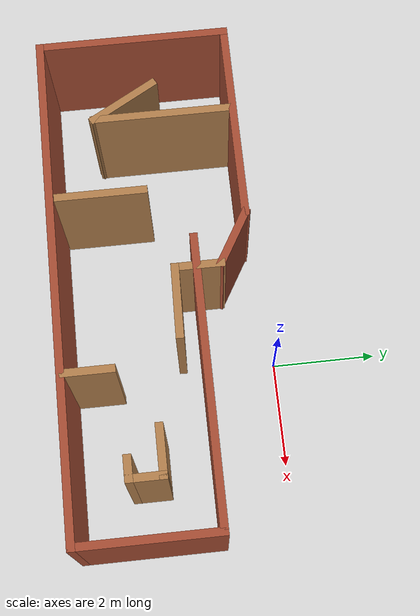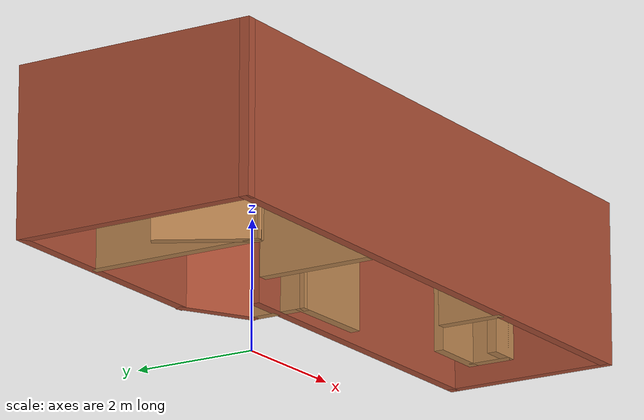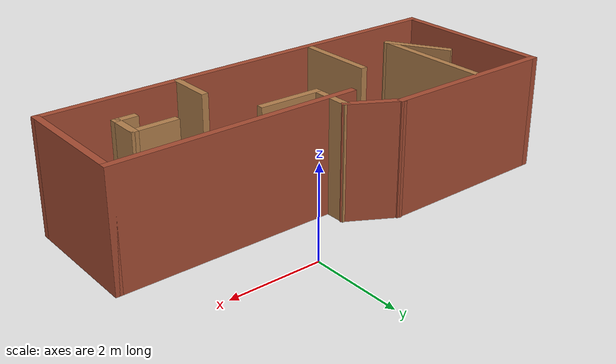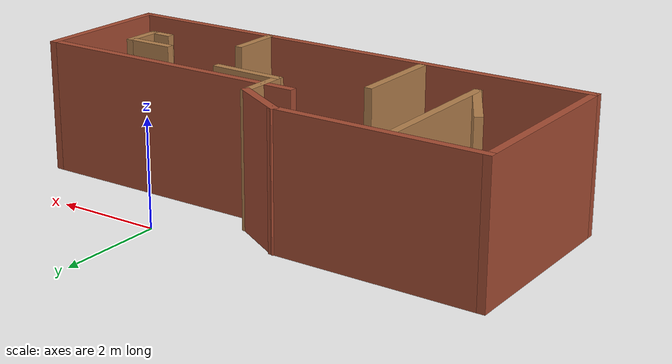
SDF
<?xml version='1.0'?>
<sdf version='1.6'>
  <model name='zlab_test'>
    <pose frame=''>-1.39 -2.14627 0 0 -0 0</pose>
    <link name='Wall_0'>
      <collision name='Wall_0_Collision'>
        <geometry>
          <box>
            <size>5.5 0.15 2.5</size>
          </box>
        </geometry>
        <pose frame=''>0 0 1.25 0 -0 0</pose>
      </collision>
      <visual name='Wall_0_Visual'>
        <pose frame=''>0 0 1.25 0 -0 0</pose>
        <geometry>
          <box>
            <size>5.5 0.15 2.5</size>
          </box>
        </geometry>
        <material>
          <script>
            <uri>file://media/materials/scripts/gazebo.material</uri>
            <name>Gazebo/Bricks</name>
          </script>
          <ambient>1 1 1 1</ambient>
        </material>
        <meta>
          <layer>0</layer>
        </meta>
      </visual>
      <pose frame=''>2.125 0.786274 0 0 -0 0</pose>
    </link>
    <link name='Wall_1'>
      <collision name='Wall_1_Collision'>
        <geometry>
          <box>
            <size>2.75 0.15 2.5</size>
          </box>
        </geometry>
        <pose frame=''>0 0 1.25 0 -0 0</pose>
      </collision>
      <visual name='Wall_1_Visual'>
        <pose frame=''>0 0 1.25 0 -0 0</pose>
        <geometry>
          <box>
            <size>2.75 0.15 2.5</size>
          </box>
        </geometry>
        <material>
          <script>
            <uri>file://media/materials/scripts/gazebo.material</uri>
            <name>Gazebo/Bricks</name>
          </script>
          <ambient>1 1 1 1</ambient>
        </material>
        <meta>
          <layer>0</layer>
        </meta>
      </visual>
      <pose frame=''>4.8 -0.513726 0 0 -0 -1.5708</pose>
    </link>
    <link name='Wall_10'>
      <collision name='Wall_10_Collision'>
        <geometry>
          <box>
            <size>1.75 0.15 2.5</size>
          </box>
        </geometry>
        <pose frame=''>0 0 1.25 0 -0 0</pose>
      </collision>
      <visual name='Wall_10_Visual'>
        <pose frame=''>0 0 1.25 0 -0 0</pose>
        <geometry>
          <box>
            <size>1.75 0.15 2.5</size>
          </box>
        </geometry>
        <material>
          <script>
            <uri>file://media/materials/scripts/gazebo.material</uri>
            <name>Gazebo/Wood</name>
          </script>
          <ambient>1 1 1 1</ambient>
        </material>
        <meta>
          <layer>0</layer>
        </meta>
      </visual>
      <pose frame=''>-1.59 -0.853726 0 0 -0 -1.5708</pose>
    </link>
    <link name='Wall_12'>
      <collision name='Wall_12_Collision'>
        <geometry>
          <box>
            <size>2.75 0.15 2.5</size>
          </box>
        </geometry>
        <pose frame=''>0 0 1.25 0 -0 0</pose>
      </collision>
      <visual name='Wall_12_Visual'>
        <pose frame=''>0 0 1.25 0 -0 0</pose>
        <geometry>
          <box>
            <size>2.75 0.15 2.5</size>
          </box>
        </geometry>
        <material>
          <script>
            <uri>file://media/materials/scripts/gazebo.material</uri>
            <name>Gazebo/Wood</name>
          </script>
          <ambient>1 1 1 1</ambient>
        </material>
        <meta>
          <layer>0</layer>
        </meta>
      </visual>
      <pose frame=''>-3.13 0.426274 0 0 -0 -1.5708</pose>
    </link>
    <link name='Wall_13'>
      <collision name='Wall_13_Collision'>
        <geometry>
          <box>
            <size>1.5 0.15 2.5</size>
          </box>
        </geometry>
        <pose frame=''>0 0 1.25 0 -0 0</pose>
      </collision>
      <visual name='Wall_13_Visual'>
        <pose frame=''>0 0 1.25 0 -0 0</pose>
        <geometry>
          <box>
            <size>1.5 0.15 2.5</size>
          </box>
        </geometry>
        <material>
          <script>
            <uri>file://media/materials/scripts/gazebo.material</uri>
            <name>Gazebo/Wood</name>
          </script>
          <ambient>1 1 1 1</ambient>
        </material>
        <meta>
          <layer>0</layer>
        </meta>
      </visual>
      <pose frame=''>-3.4675 -0.289159 0 0 -0 2.0944</pose>
    </link>
    <link name='Wall_16'>
      <collision name='Wall_16_Collision'>
        <geometry>
          <box>
            <size>1 0.15 2.5</size>
          </box>
        </geometry>
        <pose frame=''>0 0 1.25 0 -0 0</pose>
      </collision>
      <visual name='Wall_16_Visual'>
        <pose frame=''>0 0 1.25 0 -0 0</pose>
        <geometry>
          <box>
            <size>1 0.15 2.5</size>
          </box>
        </geometry>
        <material>
          <script>
            <uri>file://media/materials/scripts/gazebo.material</uri>
            <name>Gazebo/Wood</name>
          </script>
          <ambient>1 1 1 1</ambient>
        </material>
        <meta>
          <layer>0</layer>
        </meta>
      </visual>
      <pose frame=''>3.325 -0.153726 0 0 -0 0</pose>
    </link>
    <link name='Wall_17'>
      <collision name='Wall_17_Collision'>
        <geometry>
          <box>
            <size>0.75 0.15 2.5</size>
          </box>
        </geometry>
        <pose frame=''>0 0 1.25 0 -0 0</pose>
      </collision>
      <visual name='Wall_17_Visual'>
        <pose frame=''>0 0 1.25 0 -0 0</pose>
        <geometry>
          <box>
            <size>0.75 0.15 2.5</size>
          </box>
        </geometry>
        <material>
          <script>
            <uri>file://media/materials/scripts/gazebo.material</uri>
            <name>Gazebo/Wood</name>
          </script>
          <ambient>1 1 1 1</ambient>
        </material>
        <meta>
          <layer>0</layer>
        </meta>
      </visual>
      <pose frame=''>3.75 -0.453726 0 0 -0 -1.5708</pose>
    </link>
    <link name='Wall_18'>
      <collision name='Wall_18_Collision'>
        <geometry>
          <box>
            <size>0.5 0.15 2.5</size>
          </box>
        </geometry>
        <pose frame=''>0 0 1.25 0 -0 0</pose>
      </collision>
      <visual name='Wall_18_Visual'>
        <pose frame=''>0 0 1.25 0 -0 0</pose>
        <geometry>
          <box>
            <size>0.5 0.15 2.5</size>
          </box>
        </geometry>
        <material>
          <script>
            <uri>file://media/materials/scripts/gazebo.material</uri>
            <name>Gazebo/Wood</name>
          </script>
          <ambient>1 1 1 1</ambient>
        </material>
        <meta>
          <layer>0</layer>
        </meta>
      </visual>
      <pose frame=''>3.575 -0.753726 0 0 -0 3.14159</pose>
    </link>
    <link name='Wall_2'>
      <collision name='Wall_2_Collision'>
        <geometry>
          <box>
            <size>9.75 0.15 2.5</size>
          </box>
        </geometry>
        <pose frame=''>0 0 1.25 0 -0 0</pose>
      </collision>
      <visual name='Wall_2_Visual'>
        <pose frame=''>0 0 1.25 0 -0 0</pose>
        <geometry>
          <box>
            <size>9.75 0.15 2.5</size>
          </box>
        </geometry>
        <material>
          <script>
            <uri>file://media/materials/scripts/gazebo.material</uri>
            <name>Gazebo/Bricks</name>
          </script>
          <ambient>1 1 1 1</ambient>
        </material>
        <meta>
          <layer>0</layer>
        </meta>
      </visual>
      <pose frame=''>0 -1.81373 0 0 -0 3.14159</pose>
    </link>
    <link name='Wall_20'>
      <collision name='Wall_20_Collision'>
        <geometry>
          <box>
            <size>1.42772 0.15 2.5</size>
          </box>
        </geometry>
        <pose frame=''>0 0 1.25 0 -0 0</pose>
      </collision>
      <visual name='Wall_20_Visual'>
        <pose frame=''>0 0 1.25 0 -0 0</pose>
        <geometry>
          <box>
            <size>1.42772 0.15 2.5</size>
          </box>
        </geometry>
        <material>
          <script>
            <uri>file://media/materials/scripts/gazebo.material</uri>
            <name>Gazebo/Wood</name>
          </script>
          <ambient>1 1 1 1</ambient>
        </material>
        <meta>
          <layer>0</layer>
        </meta>
      </visual>
      <pose frame=''>0.641314 0.371274 0 0 -0 3.11811</pose>
    </link>
    <link name='Wall_3'>
      <collision name='Wall_3_Collision'>
        <geometry>
          <box>
            <size>3.75 0.15 2.5</size>
          </box>
        </geometry>
        <pose frame=''>0 0 1.25 0 -0 0</pose>
      </collision>
      <visual name='Wall_3_Visual'>
        <pose frame=''>0 0 1.25 0 -0 0</pose>
        <geometry>
          <box>
            <size>3.75 0.15 2.5</size>
          </box>
        </geometry>
        <material>
          <script>
            <uri>file://media/materials/scripts/gazebo.material</uri>
            <name>Gazebo/Bricks</name>
          </script>
          <ambient>1 1 1 1</ambient>
        </material>
        <meta>
          <layer>0</layer>
        </meta>
      </visual>
      <pose frame=''>-4.8 -0.013726 0 0 -0 1.5708</pose>
    </link>
    <link name='Wall_4'>
      <collision name='Wall_4_Collision'>
        <geometry>
          <box>
            <size>4 0.15 2.5</size>
          </box>
        </geometry>
        <pose frame=''>0 0 1.25 0 -0 0</pose>
      </collision>
      <visual name='Wall_4_Visual'>
        <pose frame=''>0 0 1.25 0 -0 0</pose>
        <geometry>
          <box>
            <size>4 0.15 2.5</size>
          </box>
        </geometry>
        <material>
          <script>
            <uri>file://media/materials/scripts/gazebo.material</uri>
            <name>Gazebo/Bricks</name>
          </script>
          <ambient>1 1 1 1</ambient>
        </material>
        <meta>
          <layer>0</layer>
        </meta>
      </visual>
      <pose frame=''>-2.875 1.78627 0 0 -0 0</pose>
    </link>
    <link name='Wall_5'>
      <collision name='Wall_5_Collision'>
        <geometry>
          <box>
            <size>1.25 0.15 2.5</size>
          </box>
        </geometry>
        <pose frame=''>0 0 1.25 0 -0 0</pose>
      </collision>
      <visual name='Wall_5_Visual'>
        <pose frame=''>0 0 1.25 0 -0 0</pose>
        <geometry>
          <box>
            <size>1.25 0.15 2.5</size>
          </box>
        </geometry>
        <material>
          <script>
            <uri>file://media/materials/scripts/gazebo.material</uri>
            <name>Gazebo/Bricks</name>
          </script>
          <ambient>1 1 1 1</ambient>
        </material>
        <meta>
          <layer>0</layer>
        </meta>
      </visual>
      <pose frame=''>-0.473686 1.51127 0 0 -0 -0.523599</pose>
    </link>
    <link name='Wall_6'>
      <collision name='Wall_6_Collision'>
        <geometry>
          <box>
            <size>1 0.15 2.5</size>
          </box>
        </geometry>
        <pose frame=''>0 0 1.25 0 -0 0</pose>
      </collision>
      <visual name='Wall_6_Visual'>
        <pose frame=''>0 0 1.25 0 -0 0</pose>
        <geometry>
          <box>
            <size>1 0.15 2.5</size>
          </box>
        </geometry>
        <material>
          <script>
            <uri>file://media/materials/scripts/gazebo.material</uri>
            <name>Gazebo/Wood</name>
          </script>
          <ambient>1 1 1 1</ambient>
        </material>
        <meta>
          <layer>0</layer>
        </meta>
      </visual>
      <pose frame=''>0.002628 0.811274 0 0 -0 -1.5708</pose>
    </link>
    <link name='Wall_8'>
      <collision name='Wall_8_Collision'>
        <geometry>
          <box>
            <size>1 0.15 2.5</size>
          </box>
        </geometry>
        <pose frame=''>0 0 1.25 0 -0 0</pose>
      </collision>
      <visual name='Wall_8_Visual'>
        <pose frame=''>0 0 1.25 0 -0 0</pose>
        <geometry>
          <box>
            <size>1 0.15 2.5</size>
          </box>
        </geometry>
        <material>
          <script>
            <uri>file://media/materials/scripts/gazebo.material</uri>
            <name>Gazebo/Wood</name>
          </script>
          <ambient>1 1 1 1</ambient>
        </material>
        <meta>
          <layer>0</layer>
        </meta>
      </visual>
      <pose frame=''>1.78 -1.32873 0 0 -0 -1.5708</pose>
    </link>
    <static>1</static>
  </model>
</sdf>
